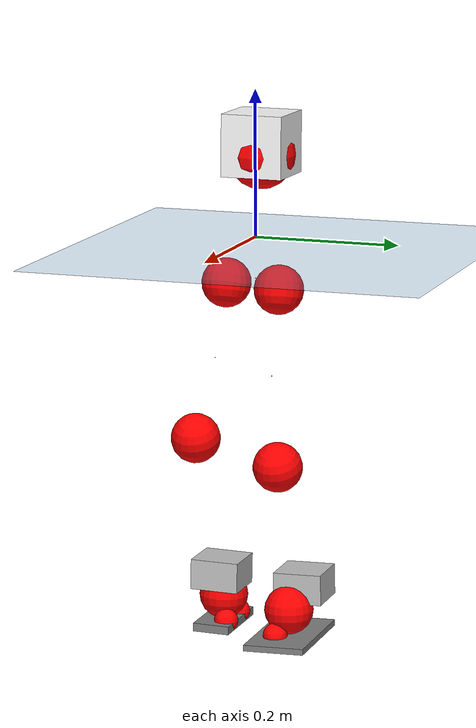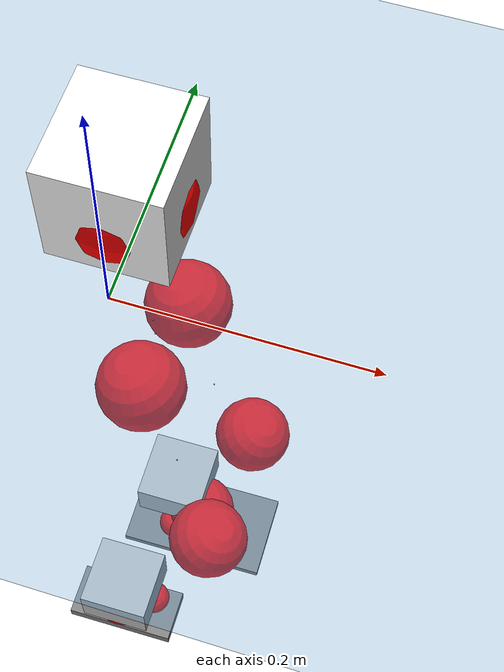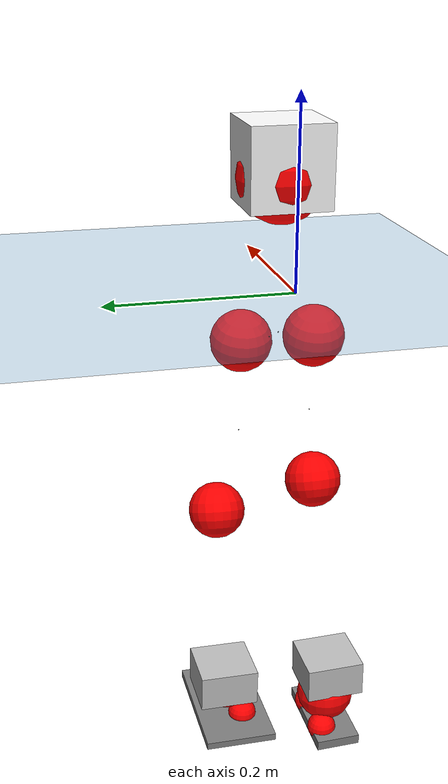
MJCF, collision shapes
<mujoco model="pi_12dof_release_v1">
  <compiler angle="radian" assetdir="assets" balanceinertia="true" inertiafromgeom="false"/>

  <option timestep="0.005" density="1.2" viscosity="2e-05"/>

  <size nkey="1"/>

  <visual>
    <quality shadowsize="8192"/>
    <map shadowclip="0.5"/>
  </visual>

  <default>
    <default class="/">
      <joint armature="0.01" damping="0.01" frictionloss="0.01"/>
      <geom contype="0" conaffinity="0" group="1" solref="-1000 -80"/>
      <site size="0.01 0.005 0.005" group="5"/>
      <general forcelimited="true" biastype="affine" gainprm="20" biasprm="0 -20 -0.5"/>
      <default class="foot">
        <geom size="0.0845 0.036 0.005" type="box" condim="6" group="4" priority="1" friction="0.9 0.2 0.2" solimp="0.015 1 0.005"/>
      </default>
      <default class="reward_collision_sphere">
        <geom group="5" rgba="1 0 0 1"/>
      </default>
    </default>
  </default>

  <asset>
    <texture type="skybox" colorspace="auto" name="//unnamed_texture_0" builtin="gradient" rgb1="0.95 0.95 0.95" rgb2="0.95 0.95 0.95" width="100" height="600"/>
    <texture type="2d" colorspace="auto" name="texplane" builtin="checker" rgb1="0.345 0.575 0.748" rgb2="0.345 0.575 0.748" markrgb="1 1 1" width="512" height="512"/>
    <material name="MatPlane" class="/" texture="texplane" texuniform="true" texrepeat="2 2" specular="0.9"/>
    <mesh name="baselink_1" class="/" file="baselink_1.STL"/>
    <mesh name="r_hip_pitch_link" class="/" file="r_hip_pitch_link.STL"/>
    <mesh name="r_hip_roll_link" class="/" file="r_hip_roll_link.STL"/>
    <mesh name="r_thigh_link" class="/" file="r_thigh_link.STL"/>
    <mesh name="r_calf_link" class="/" file="r_calf_link.STL"/>
    <mesh name="r_ankle_pitch_link" class="/" file="r_ankle_pitch_link.STL"/>
    <mesh name="r_ankle_roll_link" class="/" file="r_ankle_roll_link.STL"/>
    <mesh name="l_hip_pitch_link" class="/" file="l_hip_pitch_link.STL"/>
    <mesh name="l_hip_roll_link" class="/" file="l_hip_roll_link.STL"/>
    <mesh name="l_thigh_link" class="/" file="l_thigh_link.STL"/>
    <mesh name="l_calf_link" class="/" file="l_calf_link.STL"/>
    <mesh name="l_ankle_pitch_link" class="/" file="l_ankle_pitch_link.STL"/>
    <mesh name="l_ankle_roll_link" class="/" file="l_ankle_roll_link.STL"/>
  </asset>

  <worldbody>
    <geom name="floor" class="/" size="100 100 0.125" type="plane" group="0" material="MatPlane"/>
    <light name="toplight_shadow" class="/" pos="0 0 5" dir="0.0990148 0.0990148 -0.990148" type="directional" ambient="0.04 0.04 0.04" diffuse="0.55 0.55 0.55" specular="0.12 0.12 0.12"/>
    <light name="toplight_fill" class="/" pos="0 0 5" dir="0.0990148 0.0990148 -0.990148" type="directional" castshadow="false" ambient="0.04 0.04 0.04" diffuse="0.3 0.3 0.3" specular="0.08 0.08 0.08"/>
    <body name="trunk" pos="0.0168856 0.0126846 0.00876026" quat="0.999975 -0.00310652 -0.00572949 -0.00287631">
      <inertial pos="0.018488 0.00391244 0.0646147" quat="0.717349 -0.0201588 0.00964881 0.696355" mass="1.18883" diaginertia="8.36438e-05 0.000799318 0.0282514"/>
      <joint name="//unnamed_joint_0" type="free"/>
      <geom name="//unnamed_geom_1" class="/" type="mesh" density="0" rgba="1 1 1 1" mesh="baselink_1"/>
      <geom name="//unnamed_geom_2" class="/" size="0.0419662 0.0419662 0.0419662" pos="0 0 0.121763" type="box" rgba="1 1 1 1"/>
      <geom name="//unnamed_geom_3" class="reward_collision_sphere" size="0.0461629" pos="0 0 0.106543"/>
      <site name="imu" class="/" pos="-0.0139385 -0.041969 0.0357779" size="0.00839325"/>
      <camera name="track" class="/" pos="0 -1.23779 0" quat="0.707107 0.707107 0 0" mode="trackcom"/>
      <camera name="ego_camera" class="/" pos="0.0282779 0 0.273967" quat="-0.5 -0.5 0.5 0.5"/>
      <body name="r_hip_pitch_link" pos="0.011507 -0.00261472 -0.0590771" quat="0.992969 0.000373403 -0.118253 0.00540815">
        <inertial pos="0.0181595 -0.0237297 0.0101816" quat="-0.0345858 0.704777 -0.0210234 0.708274" mass="0.18805" diaginertia="7.14935e-07 8.67289e-06 0.000475747"/>
        <joint name="r_hip_pitch_joint" class="/" pos="0 0 0" axis="-0.0513471 -0.998016 -0.036441" stiffness="0.0834049" range="-1.72011 1.09411" armature="0.00796891" damping="0.0080888" frictionloss="0.00299077"/>
        <geom name="//unnamed_geom_4" class="/" type="mesh" density="0" rgba="0.75294 0.75294 0.75294 1" mesh="r_hip_pitch_link"/>
        <geom name="//unnamed_geom_5" class="/" size="0.000419662 0.000419662 0.000419662" type="box" rgba="0.75294 0.75294 0.75294 1"/>
        <body name="r_hip_roll_link" pos="0.000372775 -0.0404447 -0.00853068" quat="0.999999 -0.000887373 -0.000840079 -0.000330536">
          <inertial pos="-0.0175155 -0.00406791 -0.108174" quat="0.71439 -0.0722531 -0.0684735 0.692631" mass="0.244165" diaginertia="2.6242e-06 2.25403e-05 0.0011385"/>
          <joint name="r_hip_roll_joint" class="/" pos="0 0 0" axis="-0.99998 -0.00283512 0.00558167" range="0.169378 0.289708" armature="0.0157436" damping="0.066827" frictionloss="0.00715852"/>
          <geom name="//unnamed_geom_6" class="/" type="mesh" density="0" rgba="0.75294 0.75294 0.75294 1" mesh="r_hip_roll_link"/>
          <geom name="//unnamed_geom_7" class="/" size="0.000419662 0.000419662 0.000419662" type="box" rgba="0.75294 0.75294 0.75294 1"/>
          <geom name="//unnamed_geom_8" class="reward_collision_sphere" size="0.033573"/>
          <body name="r_thigh_link" pos="0.00176781 -0.00628457 -0.101655" quat="0.999982 0.000292323 -0.00392946 0.0045536">
            <inertial pos="-0.0112589 -0.00972212 -0.059041" quat="0.725733 0.683815 -0.0554498 0.0513186" mass="0.060691" diaginertia="1.04812e-06 7.50891e-06 0.000546339"/>
            <joint name="r_thigh_joint" class="/" pos="0 0 0" axis="0.0420792 -0.0553098 -0.997582" stiffness="0.0838049" range="-0.285826 0.354433" armature="0.015281" damping="0" frictionloss="0.0098834"/>
            <geom name="//unnamed_geom_9" class="/" type="mesh" density="0" rgba="0.75294 0.75294 0.75294 1" mesh="r_thigh_link"/>
            <geom name="//unnamed_geom_10" class="/" size="0.000419662 0.000419662 0.000419662" type="box" rgba="0.75294 0.75294 0.75294 1"/>
            <body name="r_calf_link" pos="0.00229667 -0.0164951 -0.110227" quat="0.947891 -0.000593156 0.318558 0.00475537">
              <inertial pos="-0.0140302 -0.00785094 -0.107391" quat="0.999855 -0.00624571 -0.0157238 0.00185288" mass="0.309345" diaginertia="2.40999e-05 0.000288796 0.00137823"/>
              <joint name="r_calf_joint" class="/" pos="0 0 0" axis="-0.0061177 -0.999968 0.00512936" range="-1.57711 0.951525" armature="0" damping="0.0741553" frictionloss="0.000909502"/>
              <geom name="//unnamed_geom_11" class="/" type="mesh" density="0" rgba="0.75294 0.75294 0.75294 1" mesh="r_calf_link"/>
              <geom name="//unnamed_geom_12" class="/" size="0.000419662 0.000419662 0.000419662" type="box" rgba="0.75294 0.75294 0.75294 1"/>
              <geom name="//unnamed_geom_13" class="reward_collision_sphere" size="0.033573"/>
              <body name="r_ankle_pitch_link" pos="-0.00340581 0.0072661 -0.22856" quat="0.979447 -0.00314625 -0.201553 -0.00703586">
                <inertial pos="0.0147427 0.0197612 0.0073258" quat="0.0257419 0.710251 -0.00993864 0.703407" mass="0.140688" diaginertia="2.52975e-06 2.48494e-05 0.00127223"/>
                <joint name="r_ankle_pitch_joint" class="/" pos="0 0 0" axis="0.0495599 -0.996134 0.0725355" stiffness="0.0826477" range="-1.01389 0.227744" armature="0.0101908" damping="0.000699412" frictionloss="0.0136116"/>
                <geom name="//unnamed_geom_14" class="/" type="mesh" density="0" rgba="0.75294 0.75294 0.75294 1" mesh="r_ankle_pitch_link"/>
                <geom name="//unnamed_geom_15" class="/" size="0.0327337 0.033573 0.0209831" type="box" rgba="0.75294 0.75294 0.75294 1"/>
                <body name="r_ankle_roll_link" pos="0.0161305 0.00317491 -0.00281626" quat="1 4.55449e-05 -0.000116808 0.000234337">
                  <inertial pos="-0.0194399 0.000918489 -0.0147778" quat="0.544524 0.437244 0.425078 0.575865" mass="0.229091" diaginertia="5.74857e-06 8.91866e-05 0.00181897"/>
                  <joint name="r_ankle_roll_joint" class="/" pos="0 0 0" axis="-0.995513 0.0135842 0.0936485" range="-0.0701049 0.444042" armature="0.00659042" damping="0.0571971" frictionloss="0.00740322"/>
                  <geom name="//unnamed_geom_16" class="/" type="mesh" density="0" rgba="0.75294 0.75294 0.75294 1" mesh="r_ankle_roll_link"/>
                  <geom name="//unnamed_geom_17" class="/" type="mesh" rgba="0.75294 0.75294 0.75294 1" mesh="r_ankle_roll_link"/>
                  <geom name="right_foot" class="foot" size="0.053184 0.025542 0.00570936" pos="-0.019229 0 -0.0669697"/>
                  <geom name="//unnamed_geom_19" class="reward_collision_sphere" size="0.033573" pos="-0.0188519 0 -0.0304408"/>
                  <geom name="//unnamed_geom_20" class="reward_collision_sphere" size="0.0167865" pos="0.00565558 0.0123779 -0.0608816"/>
                  <geom name="//unnamed_geom_21" class="reward_collision_sphere" size="0.0167865" pos="-0.0452446 0.0123779 -0.0608816"/>
                  <site name="right_foot" class="foot" pos="-0.019229 0 -0.0669697" size="0.00839325"/>
                </body>
              </body>
            </body>
          </body>
        </body>
      </body>
      <body name="l_hip_pitch_link" pos="0.00559428 0.00873455 -0.0613385" quat="0.992868 0.004475 -0.118995 0.00584295">
        <inertial pos="-0.0165994 0.0398752 -0.00466232" quat="-0.0395077 0.705264 0.0301145 0.707202" mass="0.202988" diaginertia="9.39153e-07 7.64139e-06 0.000856589"/>
        <joint name="l_hip_pitch_joint" class="/" pos="0 0 0" axis="-0.0268032 0.999637 0.00254258" stiffness="0.0404173" range="-1.46978 1.70179" armature="0.00273775" damping="0.069301" frictionloss="0.00454744"/>
        <geom name="//unnamed_geom_22" class="/" type="mesh" density="0" rgba="0.75294 0.75294 0.75294 1" mesh="l_hip_pitch_link"/>
        <geom name="//unnamed_geom_23" class="/" size="0.000419662 0.000419662 0.000419662" type="box" rgba="0.75294 0.75294 0.75294 1"/>
        <body name="l_hip_roll_link" pos="0.0162738 0.0259092 -0.0131174" quat="0.999966 0.00815925 -0.000179793 -0.000937573">
          <inertial pos="0.00180488 0.00594595 -0.0868044" quat="0.670969 -0.0362356 -0.132971 0.728565" mass="0.270718" diaginertia="2.29705e-06 2.94458e-05 0.000941003"/>
          <joint name="l_hip_roll_joint" class="/" pos="0 0 0" axis="-0.998809 0.0246142 -0.0421269" range="-0.349476 0.290482" armature="0.00302582" damping="0.0933264" frictionloss="0.00414699"/>
          <geom name="//unnamed_geom_24" class="/" type="mesh" density="0" rgba="0.75294 0.75294 0.75294 1" mesh="l_hip_roll_link"/>
          <geom name="//unnamed_geom_25" class="/" size="0.000419662 0.000419662 0.000419662" type="box" rgba="0.75294 0.75294 0.75294 1"/>
          <geom name="//unnamed_geom_26" class="reward_collision_sphere" size="0.033573"/>
          <body name="l_thigh_link" pos="-0.00780424 -0.00541103 -0.115397" quat="0.999999 0.000730051 -0.000821731 0.000445304">
            <inertial pos="-7.80018e-05 0.000472686 -0.0834607" quat="0.673556 0.739127 -0.000442386 0.0035473" mass="0.0671238" diaginertia="9.48223e-07 8.08813e-06 0.000482921"/>
            <joint name="l_thigh_joint" class="/" pos="0 0 0" axis="-0.0319505 0.00419432 -0.999481" range="-0.619058 0.390895" armature="0.01343" damping="0" frictionloss="0.0105023"/>
            <geom name="//unnamed_geom_27" class="/" type="mesh" density="0" rgba="0.75294 0.75294 0.75294 1" mesh="l_thigh_link"/>
            <geom name="//unnamed_geom_28" class="/" size="0.000419662 0.000419662 0.000419662" type="box" rgba="0.75294 0.75294 0.75294 1"/>
            <body name="l_calf_link" pos="0.000452665 0.0164774 -0.120882" quat="0.947758 0.00594774 0.318924 -0.00245292">
              <inertial pos="-0.0010921 -0.0115914 -0.107875" quat="0.996798 -0.0291424 0.0645495 0.0371237" mass="0.495098" diaginertia="2.38095e-05 0.000279313 0.00163288"/>
              <joint name="l_calf_joint" class="/" pos="0 0 0" axis="0.0044934 0.999974 -0.00562027" stiffness="0.0305526" range="-0.534865 1.5525" armature="0.0159046" damping="0.0218074" frictionloss="0.00122429"/>
              <geom name="//unnamed_geom_29" class="/" type="mesh" density="0" rgba="0.75294 0.75294 0.75294 1" mesh="l_calf_link"/>
              <geom name="//unnamed_geom_30" class="/" size="0.000419662 0.000419662 0.000419662" type="box" rgba="0.75294 0.75294 0.75294 1"/>
              <geom name="//unnamed_geom_31" class="reward_collision_sphere" size="0.033573"/>
              <body name="l_ankle_pitch_link" pos="-0.00239342 0.0057263 -0.198697" quat="0.980146 -0.00410814 -0.198219 0.00236997">
                <inertial pos="0.00221409 0.00948332 -0.00325342" quat="-0.00459399 0.712169 0.00244608 0.701988" mass="0.129376" diaginertia="2.88837e-06 2.275e-05 0.00129717"/>
                <joint name="l_ankle_pitch_joint" class="/" pos="0 0 0" axis="0.0123816 0.999615 -0.0248291" stiffness="0.020665" range="-0.398341 1.34194" armature="0.00873115" damping="0.0109558" frictionloss="0.00452731"/>
                <geom name="//unnamed_geom_32" class="/" type="mesh" density="0" rgba="0.75294 0.75294 0.75294 1" mesh="l_ankle_pitch_link"/>
                <geom name="//unnamed_geom_33" class="/" size="0.0327337 0.033573 0.0209831" type="box" rgba="0.75294 0.75294 0.75294 1"/>
                <body name="l_ankle_roll_link" pos="0.0473643 -0.0132545 0.000491916" quat="0.999996 0.000571686 -0.00259933 0.00110765">
                  <inertial pos="-0.0272034 0.000229179 -0.0328068" quat="0.571576 0.396045 0.423456 0.580633" mass="0.28993" diaginertia="9.07128e-06 0.000132389 0.00238241"/>
                  <joint name="l_ankle_roll_joint" class="/" pos="0 0 0" axis="-0.997531 0.0417017 -0.0565065" stiffness="0.0562738" range="-0.0120911 0.139316" armature="0.00689891" damping="0" frictionloss="0.00551778"/>
                  <geom name="//unnamed_geom_34" class="/" type="mesh" density="0" rgba="0.75294 0.75294 0.75294 1" mesh="l_ankle_roll_link"/>
                  <geom name="//unnamed_geom_35" class="/" type="mesh" rgba="0.75294 0.75294 0.75294 1" mesh="l_ankle_roll_link"/>
                  <geom name="left_foot" class="foot" size="0.0730719 0.0419508 0.00414186" pos="-0.019229 0 -0.0669697"/>
                  <geom name="//unnamed_geom_37" class="reward_collision_sphere" size="0.033573" pos="-0.0188519 0 -0.0304408"/>
                  <geom name="//unnamed_geom_38" class="reward_collision_sphere" size="0.0167865" pos="0.00565558 -0.0123779 -0.0608816"/>
                  <geom name="//unnamed_geom_39" class="reward_collision_sphere" size="0.0167865" pos="-0.0452446 -0.0123779 -0.0608816"/>
                  <site name="left_foot" class="foot" pos="-0.019229 0 -0.0669697" size="0.00839325"/>
                </body>
              </body>
            </body>
          </body>
        </body>
      </body>
    </body>
  </worldbody>

  <contact>
    <pair class="/" geom1="floor" geom2="right_foot" name="//unnamed_contact_1"/>
    <pair class="/" geom1="floor" geom2="left_foot" name="//unnamed_contact_0"/>
  </contact>

  <actuator>
    <general name="r_hip_pitch_joint" class="/" joint="r_hip_pitch_joint" forcerange="-21.8177 21.8177" gainprm="14.5913" biasprm="0 -14.5913 -0.536284"/>
    <general name="r_hip_roll_joint" class="/" joint="r_hip_roll_joint" forcerange="-18.2135 18.2135" gainprm="14.5913" biasprm="0 -14.5913 -0.536284"/>
    <general name="r_thigh_joint" class="/" joint="r_thigh_joint" forcerange="-18.6164 18.6164" gainprm="14.5913" biasprm="0 -14.5913 -0.536284"/>
    <general name="r_calf_joint" class="/" joint="r_calf_joint" forcerange="-21.3636 21.3636" gainprm="14.5913" biasprm="0 -14.5913 -0.536284"/>
    <general name="r_ankle_pitch_joint" class="/" joint="r_ankle_pitch_joint" forcerange="-13.6312 13.6312" gainprm="14.5913" biasprm="0 -14.5913 -0.536284"/>
    <general name="r_ankle_roll_joint" class="/" joint="r_ankle_roll_joint" forcerange="-21.4445 21.4445" gainprm="14.5913" biasprm="0 -14.5913 -0.536284"/>
    <general name="l_hip_pitch_joint" class="/" joint="l_hip_pitch_joint" forcerange="-20.0055 20.0055" gainprm="14.5913" biasprm="0 -14.5913 -0.536284"/>
    <general name="l_hip_roll_joint" class="/" joint="l_hip_roll_joint" forcerange="-24.524 24.524" gainprm="14.5913" biasprm="0 -14.5913 -0.536284"/>
    <general name="l_thigh_joint" class="/" joint="l_thigh_joint" forcerange="-17.764 17.764" gainprm="14.5913" biasprm="0 -14.5913 -0.536284"/>
    <general name="l_calf_joint" class="/" joint="l_calf_joint" forcerange="-5.78149 5.78149" gainprm="14.5913" biasprm="0 -14.5913 -0.536284"/>
    <general name="l_ankle_pitch_joint" class="/" joint="l_ankle_pitch_joint" forcerange="-17.941 17.941" gainprm="14.5913" biasprm="0 -14.5913 -0.536284"/>
    <general name="l_ankle_roll_joint" class="/" joint="l_ankle_roll_joint" forcerange="-26.4217 26.4217" gainprm="14.5913" biasprm="0 -14.5913 -0.536284"/>
  </actuator>

  <sensor>
    <gyro site="imu" name="imu_angular_velocity"/>
    <velocimeter site="imu" name="imu_linear_velocity"/>
    <framelinvel objtype="site" objname="left_foot" name="left_foot_global_linear_velocity"/>
    <framelinvel objtype="site" objname="right_foot" name="right_foot_global_linear_velocity"/>
  </sensor>

  <keyframe>
    <key name="home" qpos="0 0 0.291 1 0 0 0 0.4 0 0 -0.8 0.4 0 -0.4 0 0 0.8 -0.4 0"/>
  </keyframe>
</mujoco>
